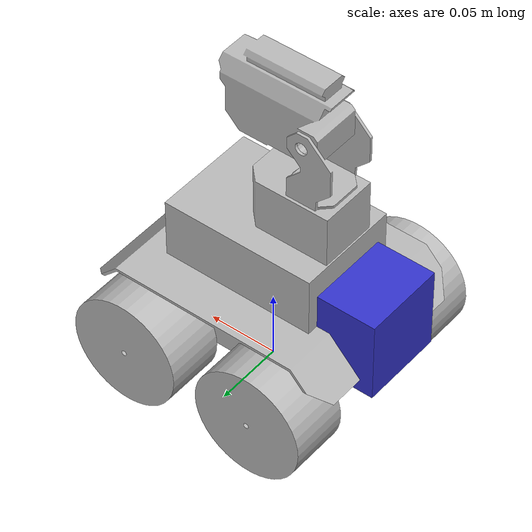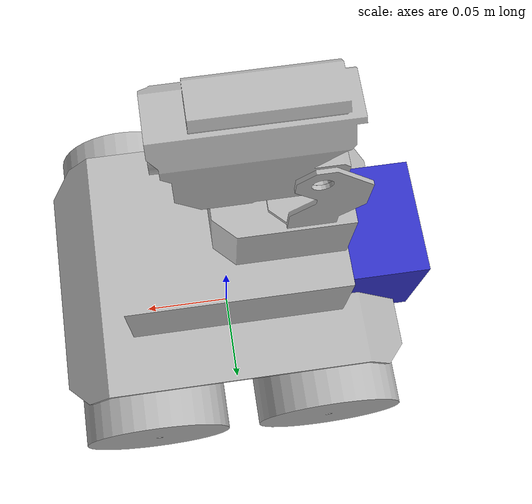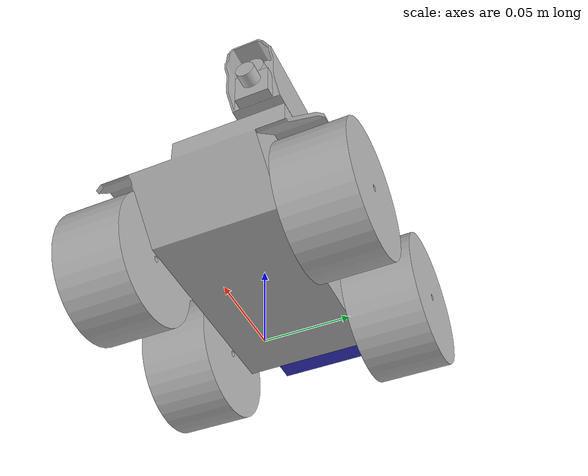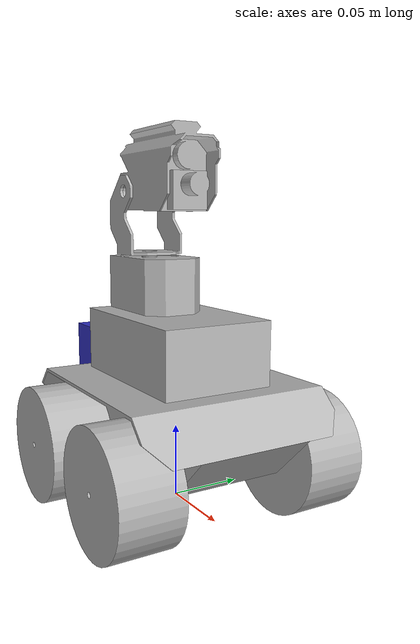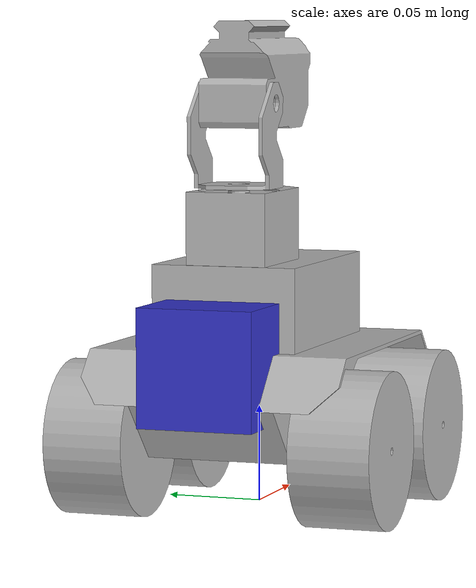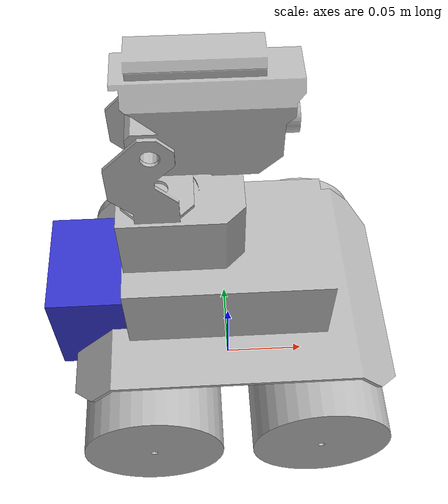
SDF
<?xml version='1.0'?>
<sdf version='1.5'>
  <model name='rasp_rover'>
   <pose>0.0 0.0 0.0 0.0 0.0 0</pose>

  <link name='base_footprint'/>

  <link name='base_link'>
    <inertial>
      <pose relative_to='base_joint'>0 0 0 0 0 0</pose>
      <mass>2.78375064359473</mass>
      <inertia>
        <ixx>0.00651567554169617</ixx>
        <ixy>-5.86655425789789E-13</ixy>
        <ixz>3.77886436056975E-05</ixz>
        <iyy>0.00933991752413667</iyy>
        <iyz>-2.53116742521487E-11</iyz>
        <izz>0.0121583506563461</izz>
       </inertia>
    </inertial>
    <visual name='base_link_visual'>
      <pose relative_to='base_joint'>0 0 0 0 0 0</pose>
      <geometry>
          <mesh>
            <scale>1 1 1</scale>
            <uri>model://ugv_description/meshes/rasp_rover/base_link.stl</uri>
          </mesh>
      </geometry>
    </visual>
    <collision name='base_link_collision'>
      <pose relative_to='base_joint'>0 0 0 0 0 0</pose>
      <geometry>
          <mesh>
            <scale>1 1 1</scale>
            <uri>model://ugv_description/meshes/rasp_rover/base_link.stl</uri>
          </mesh>
      </geometry>
    </collision>
  </link>

  <link name='base_imu_link'>
    <pose relative_to='imu_joint'>0 0 0 0 0 0</pose>
     <sensor name='ugv_imu' type='imu'>
        <always_on>true</always_on>
        <update_rate>20</update_rate>
         <imu>
          <angular_velocity>
            <x>
              <noise type='gaussian'>
                <mean>0.0</mean>
                <stddev>2e-4</stddev>
              </noise>
            </x>
            <y>
              <noise type='gaussian'>
                <mean>0.0</mean>
                <stddev>2e-4</stddev>
              </noise>
            </y>
            <z>
              <noise type='gaussian'>
                <mean>0.0</mean>
                <stddev>2e-4</stddev>
              </noise>
            </z>
          </angular_velocity>
          <linear_acceleration>
            <x>
              <noise type='gaussian'>
                <mean>0.0</mean>
                <stddev>1.7e-2</stddev>
              </noise>
            </x>
            <y>
              <noise type='gaussian'>
                <mean>0.0</mean>
                <stddev>1.7e-2</stddev>
              </noise>
            </y>
            <z>
              <noise type='gaussian'>
                <mean>0.0</mean>
                <stddev>1.7e-2</stddev>
              </noise>
            </z>
          </linear_acceleration>
        </imu>
        <topic>imu</topic>
        <gz_frame_id>base_imu_link</gz_frame_id>
      </sensor>
  </link>

  <link name='left_up_wheel_link'>
  <pose relative_to='left_up_wheel_link_joint'>0 0 0 0 -0 0</pose>
        <inertial>
          <pose>-0 0.02679 0 0 -0 0</pose>
          <mass>0.210587</mass>
          <inertia>
            <ixx>0.000115402</ixx>
            <ixy>-1.32502e-18</ixy>
            <ixz>-4.34981e-35</ixz>
            <iyy>0.000168891</iyy>
            <iyz>2.37169e-21</iyz>
            <izz>0.000115402</izz>
          </inertia>
        </inertial>
    <visual name='left_up_wheel_link_visual'>
      <pose>0 0 0 0 -0 0</pose>
      <geometry>
          <mesh>
            <scale>1 1 1</scale>
            <uri>model://ugv_description/meshes/rasp_rover/left_up_wheel_link.stl</uri>
          </mesh>
      </geometry>
    </visual>
    <collision name='left_up_wheel_link_collision'>
      <pose>0 0 0 0 -0 0</pose>
      <geometry>
          <mesh>
            <scale>1 1 1</scale>
            <uri>model://ugv_description/meshes/rasp_rover/left_up_wheel_link.stl</uri>
          </mesh>
      </geometry>
    </collision>
  </link>

  <link name='left_down_wheel_link'>
        <pose relative_to='left_down_wheel_link_joint'>0 0 0 0 -0 0</pose>
        <inertial>
          <pose>-0 0.02679 0 0 -0 0</pose>
          <mass>0.210587</mass>
          <inertia>
            <ixx>0.000115402</ixx>
            <ixy>-1.32809e-18</ixy>
            <ixz>1.27629e-32</ixz>
            <iyy>0.000168891</iyy>
            <iyz>-5.16307e-19</iyz>
            <izz>0.000115402</izz>
          </inertia>
        </inertial>
    <visual name='left_down_wheel_link_visual'>
      <pose>0 0 0 0 -0 0</pose>
      <geometry>
          <mesh>
            <scale>1 1 1</scale>
            <uri>model://ugv_description/meshes/rasp_rover/left_down_wheel_link.stl</uri>
          </mesh>
      </geometry>
    </visual>
    <collision name='left_down_wheel_link_collision'>
      <pose>0 0 0 0 -0 0</pose>
      <geometry>
          <mesh>
            <scale>1 1 1</scale>
            <uri>model://ugv_description/meshes/rasp_rover/left_down_wheel_link.stl</uri>
          </mesh>
      </geometry>
    </collision>
  </link>

  <link name='right_up_wheel_link'>
        <pose relative_to='right_up_wheel_link_joint'>0 0 0 0 -0 0</pose>
        <inertial>
          <pose>0 -0.02679 0 0 -0 0</pose>
          <mass>0.210587</mass>
          <inertia>
            <ixx>0.000115402</ixx>
            <ixy>-1.32502e-18</ixy>
            <ixz>-4.34981e-35</ixz>
            <iyy>0.000168891</iyy>
            <iyz>2.37169e-21</iyz>
            <izz>0.000115402</izz>
          </inertia>
        </inertial>
    <visual name='right_up_wheel_link_visual'>
      <pose>0 0 0 0 -0 0</pose>
      <geometry>
          <mesh>
            <scale>1 1 1</scale>
            <uri>model://ugv_description/meshes/rasp_rover/right_up_wheel_link.stl</uri>
          </mesh>
      </geometry>
    </visual>
    <collision name='right_up_wheel_link_collision'>
      <pose>0 0 0 0 -0 0</pose>
      <geometry>
          <mesh>
            <scale>1 1 1</scale>
            <uri>model://ugv_description/meshes/rasp_rover/right_up_wheel_link.stl</uri>
          </mesh>
      </geometry>
    </collision>
  </link>

  <link name='right_down_wheel_link'>
        <pose relative_to='right_down_wheel_link_joint'>0 0 0 0 -0 0</pose>
        <inertial>
          <pose>0 -0.02679 0 0 -0 0</pose>
          <mass>0.210587</mass>
          <inertia>
            <ixx>0.000115402</ixx>
            <ixy>-1.32502e-18</ixy>
            <ixz>1.27637e-32</ixz>
            <iyy>0.000168891</iyy>
            <iyz>-5.18688e-19</iyz>
            <izz>0.000115402</izz>
          </inertia>
        </inertial>
    <visual name='right_down_wheel_link_visual'>
      <pose>0 0 0 0 -0 0</pose>
      <geometry>
          <mesh>
            <scale>1 1 1</scale>
            <uri>model://ugv_description/meshes/rasp_rover/right_down_wheel_link.stl</uri>
          </mesh>
      </geometry>
    </visual>
    <collision name='right_down_wheel_link_collision'>
      <pose>0 0 0 0 -0 0</pose>
      <geometry>
          <mesh>
            <scale>1 1 1</scale>
            <uri>model://ugv_description/meshes/rasp_rover/right_down_wheel_link.stl</uri>
          </mesh>
      </geometry>
    </collision>
  </link>

    <link name='livox'>
      <pose relative_to='livox_joint'>0 0 0 0 -0 0</pose>
      <inertial>
        <pose>0 0 0 0 -0 0</pose>
        <mass>0.4</mass>
        <inertia>
          <ixx>0.000453333</ixx>
          <ixy>0</ixy>
          <ixz>0</ixz>
          <iyy>0.000453333</iyy>
          <iyz>0</iyz>
          <izz>0.00024</izz>
        </inertia>
      </inertial>
      <visual name='livox_visual'>
        <geometry>
          <box>
            <size>0.1 0.06 0.06</size>
          </box>
        </geometry>
        <material>
          <ambient>0.2 0.2 0.8 1</ambient>
          <diffuse>0.2 0.2 0.8 1</diffuse>
        </material>
      </visual>
      <!-- Livox Mid-360 approximated by a gz-native gpu_lidar.
           PointCloud2 is published gz-side on 'mid360/points' and bridged
           to /mid360 (sensor_msgs/PointCloud2). -->
      <sensor name='livox' type='gpu_lidar'>
        <topic>mid360</topic>
        <gz_frame_id>livox</gz_frame_id>
        <update_rate>10</update_rate>
        <always_on>true</always_on>
        <visualize>true</visualize>
        <lidar>
          <scan>
            <horizontal>
              <samples>360</samples>
              <resolution>1</resolution>
              <min_angle>-3.1415926</min_angle>
              <max_angle>3.1415926</max_angle>
            </horizontal>
            <vertical>
              <samples>60</samples>
              <resolution>1</resolution>
              <min_angle>-0.126017</min_angle>
              <max_angle>0.96378</max_angle>
            </vertical>
          </scan>
          <range>
            <min>0.1</min>
            <max>200.0</max>
            <resolution>0.01</resolution>
          </range>
          <noise>
            <type>gaussian</type>
            <mean>0.0</mean>
            <stddev>0.01</stddev>
          </noise>
        </lidar>
      </sensor>
    </link>

  <link name='pt_base_link'>
  <pose relative_to='pt_base_link_joint'>0 0 0 0 -0 0</pose>
    <inertial>
      <pose>0 0 0 0 -0 0</pose>
      <mass>0.109518186442022</mass>
      <inertia>
        <ixx>3.30168147078049E-05</ixx>
        <ixy>-2.724587071518E-18</ixy>
        <ixz>-2.93137934608679E-06</ixz>
        <iyy>5.1580984319637E-05</iyy>
        <iyz>-6.32568066032632E-18</iyz>
        <izz>4.86101329827052E-05</izz>
       </inertia>
    </inertial>
    <visual name='pt_base_link_visual'>
      <pose>0 0 0 0 -0 0</pose>
      <geometry>
          <mesh>
            <scale>1 1 1</scale>
            <uri>model://ugv_description/meshes/rasp_rover/pt_base_link.stl</uri>
          </mesh>
      </geometry>
    </visual>
    <collision name='pt_base_link_collision'>
      <pose>0 0 0 0 -0 0</pose>
      <geometry>
          <mesh>
            <scale>1 1 1</scale>
            <uri>model://ugv_description/meshes/rasp_rover/pt_base_link.stl</uri>
          </mesh>
      </geometry>
    </collision>
  </link>

  <link name='pt_link1'>
  <pose relative_to='pt_base_link_to_pt_link1'>0 0 0 0 -0 0</pose>
    <inertial>
    <pose>-0.003381 0 0.01761 0 -0 0</pose>
      <mass>0.00710917409663916</mass>
      <inertia>
        <ixx>3.89716322571471E-06</ixx>
        <ixy>-3.20607036006508E-19</ixy>
        <ixz>2.32919366130509E-07</ixz>
        <iyy>2.4980668051168E-06</iyy>
        <iyz>-2.87650001968868E-19</iyz>
        <izz>2.60402792588347E-06</izz>
      </inertia>
    </inertial>
    <visual name='pt_link1_visual'>
      <pose>0 0 0 0 -0 0</pose>
      <geometry>
          <mesh>
            <scale>1 1 1</scale>
            <uri>model://ugv_description/meshes/rasp_rover/pt_link1.stl</uri>
          </mesh>
      </geometry>
    </visual>
    <collision name='pt_link1_collision'>
      <pose>0 0 0 0 -0 0</pose>
      <geometry>
          <mesh>
            <scale>1 1 1</scale>
            <uri>model://ugv_description/meshes/rasp_rover/pt_link1.stl</uri>
          </mesh>
      </geometry>
    </collision>
  </link>

  <link name='pt_link2'>
        <pose relative_to='pt_link1_to_pt_link2'>0 0 0 0 -0 0</pose>
        <inertial>
          <pose>0.023763 0.01126 0.02 0 -0 0</pose>
          <mass>0.103286</mass>
          <inertia>
            <ixx>3.20126e-05</ixx>
            <ixy>1.18182e-06</ixy>
            <ixz>8.05374e-13</ixz>
            <iyy>4.3875e-05</iyy>
            <iyz>-2.49463e-13</iyz>
            <izz>5.67494e-05</izz>
          </inertia>
        </inertial>
    <visual name='pt_link2_visual'>
      <pose>0 0 0 0 -0 0</pose>
      <geometry>
          <mesh>
            <scale>1 1 1</scale>
            <uri>model://ugv_description/meshes/rasp_rover/pt_link2.stl</uri>
          </mesh>
      </geometry>
    </visual>
    <collision name='pt_link2_collision'>
      <pose>0 0 0 0 -0 0</pose>
      <geometry>
          <mesh>
            <scale>1 1 1</scale>
            <uri>model://ugv_description/meshes/rasp_rover/pt_link2.stl</uri>
          </mesh>
      </geometry>
    </collision>
  </link>

  <link name='pt_camera_link'>
  <pose relative_to='pt_link2_to_pt_camera_link'>0 0 0 0 -0 0</pose>
    <inertial>
      <pose>0 0 0 0 -0 0</pose>
      <mass>0.00623651844028495</mass>
      <inertia>
        <ixx>5.11295942352593E-07</ixx>
        <ixy>3.46495200123478E-22</ixy>
        <ixz>-4.00917493406375E-08</ixz>
        <iyy>3.99078324787848E-07</iyy>
        <iyz>1.31404415819798E-22</iyz>
        <izz>4.02518684222241E-07</izz>
      </inertia>
    </inertial>
    <visual name='pt_camera_link_visual'>
      <pose>0 0 0 0 -0 0</pose>
      <geometry>
          <mesh>
            <scale>1 1 1</scale>
            <uri>model://ugv_description/meshes/rasp_rover/pt_camera_link.stl</uri>
          </mesh>
      </geometry>
    </visual>
    <collision name='pt_camera_link_collision'>
      <pose>0 0 0 0 -0 0</pose>
      <geometry>
          <mesh>
            <scale>1 1 1</scale>
            <uri>model://ugv_description/meshes/rasp_rover/pt_camera_link.stl</uri>
          </mesh>
      </geometry>
    </collision>
      <sensor name="pt_camera" type="camera">
        <pose>0 0 0 0 -0 0</pose>
        <always_on>true</always_on>
        <visualize>true</visualize>
        <update_rate>30</update_rate>
        <topic>pt_camera</topic>
        <gz_frame_id>pt_camera_link</gz_frame_id>
        <camera name="intel_realsense_r200">
          <horizontal_fov>1.02974</horizontal_fov>
          <image>
            <width>640</width>
            <height>480</height>
            <format>R8G8B8</format>
          </image>
          <clip>
            <near>0.02</near>
            <far>300</far>
          </clip>
          <noise>
            <type>gaussian</type>
            <mean>0.0</mean>
            <stddev>0.007</stddev>
          </noise>
        </camera>
      </sensor>
  </link>

  <joint name='base_joint' type='fixed'>
    <pose relative_to='base_footprint'>0.00046 0 0.03 0 -0 0</pose>
    <parent>base_footprint</parent>
    <child>base_link</child>
  </joint>

  <joint name='imu_joint' type='fixed'>
      <parent>base_footprint</parent>
      <child>base_imu_link</child>
      <pose relative_to='base_footprint'>0.00046 0 0.08 0 -0 0</pose>
  </joint>

  <joint name='left_up_wheel_link_joint' type='revolute'>
    <pose relative_to='base_footprint'>0.049926 0.03801 0.036748 0 -0 0</pose>
      <parent>base_footprint</parent>
    <child>left_up_wheel_link</child>
       <axis>
        <xyz>0 1 0</xyz>
      </axis>
  </joint>

  <joint name='left_down_wheel_link_joint' type='revolute'>
    <pose relative_to='base_footprint'>-0.047072 0.03801 0.036748 0 -0 0</pose>
      <parent>base_footprint</parent>
    <child>left_down_wheel_link</child>
       <axis>
        <xyz>0 1 0</xyz>
      </axis>
  </joint>

  <joint name='right_up_wheel_link_joint' type='revolute'>
    <pose relative_to='base_footprint'>0.049926 -0.03801 0.036748 0 -0 0</pose>
      <parent>base_footprint</parent>
    <child>right_up_wheel_link</child>
       <axis>
        <xyz>0 1 0</xyz>
      </axis>
  </joint>

  <joint name='right_down_wheel_link_joint' type='revolute'>
    <pose relative_to='base_footprint'>-0.047072 -0.03801 0.036748 0 -0 0</pose>
      <parent>base_footprint</parent>
    <child>right_down_wheel_link</child>
       <axis>
        <xyz>0 1 0</xyz>
      </axis>
  </joint>

  <joint name='livox_joint' type='fixed'>
    <pose relative_to='base_link'>-0.05 0 0.08 0 -0 0</pose>
    <parent>base_link</parent>
    <child>livox</child>
  </joint>

  <joint name='pt_base_link_joint' type='fixed'>
    <pose relative_to='base_footprint'>-0.02525 -0.001015 0.127648 0 -0 0</pose>
      <parent>base_footprint</parent>
    <child>pt_base_link</child>
       <axis>
        <xyz>0 0 1</xyz>
      </axis>
  </joint>

  <joint name='pt_base_link_to_pt_link1' type='fixed'>
    <pose relative_to='base_footprint'>-0.035401 -0.001015 0.165948 0 -0 0</pose>
      <parent>pt_base_link</parent>
    <child>pt_link1</child>
       <axis>
        <xyz>0 0 -1</xyz>
      </axis>
  </joint>

  <joint name='pt_link1_to_pt_link2' type='fixed'>
    <pose relative_to='pt_link1'>0 0.02 0.043003 1.5708 -0 0</pose>
      <parent>pt_link1</parent>
    <child>pt_link2</child>
       <axis>
        <xyz>0 -1 0</xyz>
      </axis>
  </joint>

  <joint name='pt_link2_to_pt_camera_link' type='fixed'>
    <pose relative_to='pt_link2'>0.047686 -0.000569 0.02 -1.5708 0 0</pose>
      <parent>pt_link2</parent>
    <child>pt_camera_link</child>
       <axis>
        <xyz>0 0 1</xyz>
      </axis>
  </joint>

     <static>0</static>

  <plugin filename="gz-sim-diff-drive-system" name="gz::sim::systems::DiffDrive">
    <num_wheel_pairs>2</num_wheel_pairs>

    <!-- wheels0 -->
    <left_joint>left_up_wheel_link_joint</left_joint>
    <right_joint>right_up_wheel_link_joint</right_joint>

    <!-- wheels1 -->
    <left_joint>left_down_wheel_link_joint</left_joint>
    <right_joint>right_down_wheel_link_joint</right_joint>

    <!-- kinematics (gz uses wheel_radius, not diameter) -->
    <wheel_separation>0.125</wheel_separation>
    <wheel_separation>0.125</wheel_separation>
    <wheel_radius>0.025</wheel_radius>
    <wheel_radius>0.025</wheel_radius>

    <!-- limits -->
    <max_linear_acceleration>1.0</max_linear_acceleration>

    <!-- io -->
    <topic>cmd_vel</topic>
    <odom_topic>odom</odom_topic>
    <tf_topic>tf</tf_topic>
    <frame_id>odom</frame_id>
    <child_frame_id>base_footprint</child_frame_id>
    <odom_publish_frequency>20</odom_publish_frequency>
  </plugin>

  <plugin filename="gz-sim-joint-state-publisher-system"
          name="gz::sim::systems::JointStatePublisher">
    <topic>joint_states</topic>
    <update_rate>2</update_rate>
    <joint_name>left_up_wheel_link_joint</joint_name>
    <joint_name>right_up_wheel_link_joint</joint_name>
    <joint_name>left_down_wheel_link_joint</joint_name>
    <joint_name>right_down_wheel_link_joint</joint_name>
  </plugin>
  </model>
</sdf>
